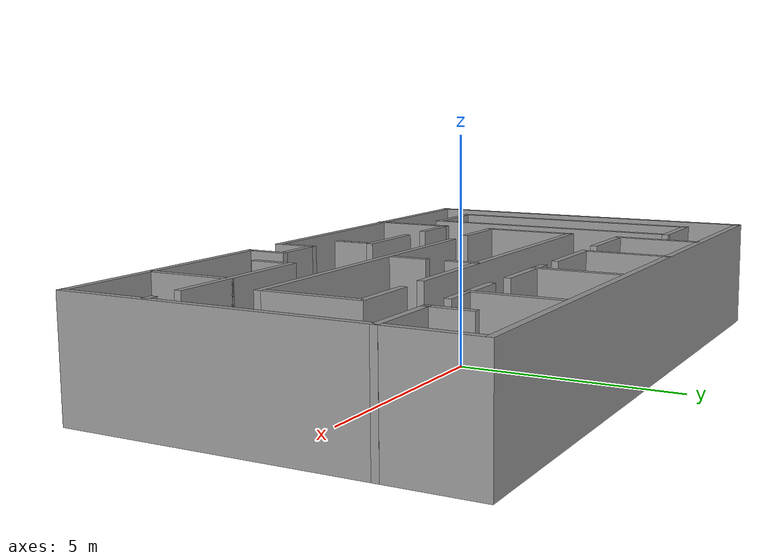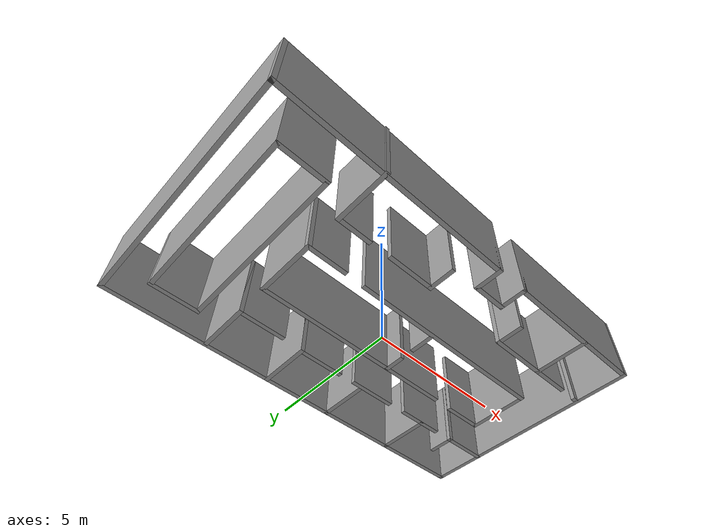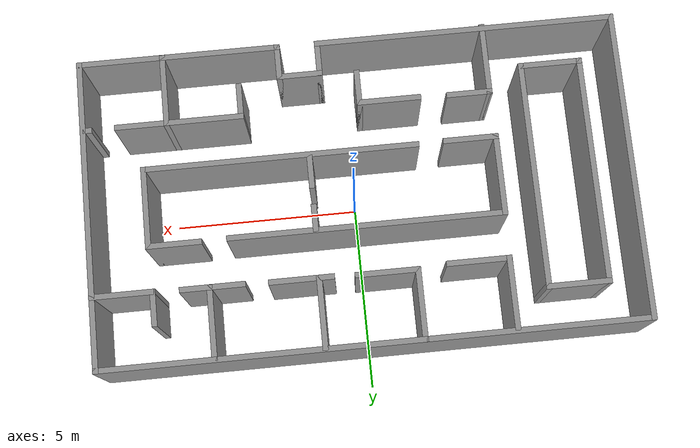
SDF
<?xml version='1.0'?>
<sdf version='1.7'>
  <model name='laber_1'>
    <pose>-0.168779 -0.095136 0 0 -0 0</pose>
    <link name='Wall_0'>
      <collision name='Wall_0_Collision'>
        <geometry>
          <box>
            <size>8.25 0.15 2.5</size>
          </box>
        </geometry>
        <pose>0 0 1.25 0 -0 0</pose>
      </collision>
      <visual name='Wall_0_Visual'>
        <pose>0 0 1.25 0 -0 0</pose>
        <geometry>
          <box>
            <size>8.25 0.15 2.5</size>
          </box>
        </geometry>
        <material>
          <script>
            <uri>file://media/materials/scripts/gazebo.material</uri>
            <name>Gazebo/Grey</name>
          </script>
          <ambient>1 1 1 1</ambient>
        </material>
        <meta>
          <layer>0</layer>
        </meta>
      </visual>
      <pose>-3.25122 -4.15486 0 0 -0 0</pose>
    </link>
    <link name='Wall_1'>
      <collision name='Wall_1_Collision'>
        <geometry>
          <box>
            <size>1 0.15 2.5</size>
          </box>
        </geometry>
        <pose>0 0 1.25 0 -0 0</pose>
      </collision>
      <visual name='Wall_1_Visual'>
        <pose>0 0 1.25 0 -0 0</pose>
        <geometry>
          <box>
            <size>1 0.15 2.5</size>
          </box>
        </geometry>
        <material>
          <script>
            <uri>file://media/materials/scripts/gazebo.material</uri>
            <name>Gazebo/Grey</name>
          </script>
          <ambient>1 1 1 1</ambient>
        </material>
        <meta>
          <layer>0</layer>
        </meta>
      </visual>
      <pose>0.798779 -3.72986 0 0 -0 1.5708</pose>
    </link>
    <link name='Wall_12'>
      <collision name='Wall_12_Collision'>
        <geometry>
          <box>
            <size>8.5 0.15 2.5</size>
          </box>
        </geometry>
        <pose>0 0 1.25 0 -0 0</pose>
      </collision>
      <visual name='Wall_12_Visual'>
        <pose>0 0 1.25 0 -0 0</pose>
        <geometry>
          <box>
            <size>8.5 0.15 2.5</size>
          </box>
        </geometry>
        <material>
          <script>
            <uri>file://media/materials/scripts/gazebo.material</uri>
            <name>Gazebo/Grey</name>
          </script>
          <ambient>1 1 1 1</ambient>
        </material>
        <meta>
          <layer>0</layer>
        </meta>
      </visual>
      <pose>-7.30122 0.020136 0 0 -0 1.5708</pose>
    </link>
    <link name='Wall_13'>
      <collision name='Wall_13_Collision'>
        <geometry>
          <box>
            <size>14.75 0.15 2.5</size>
          </box>
        </geometry>
        <pose>0 0 1.25 0 -0 0</pose>
      </collision>
      <visual name='Wall_13_Visual'>
        <pose>0 0 1.25 0 -0 0</pose>
        <geometry>
          <box>
            <size>14.75 0.15 2.5</size>
          </box>
        </geometry>
        <material>
          <script>
            <uri>file://media/materials/scripts/gazebo.material</uri>
            <name>Gazebo/Grey</name>
          </script>
          <ambient>1 1 1 1</ambient>
        </material>
        <meta>
          <layer>0</layer>
        </meta>
      </visual>
      <pose>-0.001221 4.19514 0 0 -0 0</pose>
    </link>
    <link name='Wall_14'>
      <collision name='Wall_14_Collision'>
        <geometry>
          <box>
            <size>8.5 0.15 2.5</size>
          </box>
        </geometry>
        <pose>0 0 1.25 0 -0 0</pose>
      </collision>
      <visual name='Wall_14_Visual'>
        <pose>0 0 1.25 0 -0 0</pose>
        <geometry>
          <box>
            <size>8.5 0.15 2.5</size>
          </box>
        </geometry>
        <material>
          <script>
            <uri>file://media/materials/scripts/gazebo.material</uri>
            <name>Gazebo/Grey</name>
          </script>
          <ambient>1 1 1 1</ambient>
        </material>
        <meta>
          <layer>0</layer>
        </meta>
      </visual>
      <pose>7.29878 0.020136 0 0 -0 -1.5708</pose>
    </link>
    <link name='Wall_16'>
      <collision name='Wall_16_Collision'>
        <geometry>
          <box>
            <size>6.25 0.15 2.5</size>
          </box>
        </geometry>
        <pose>0 0 1.25 0 -0 0</pose>
      </collision>
      <visual name='Wall_16_Visual'>
        <pose>0 0 1.25 0 -0 0</pose>
        <geometry>
          <box>
            <size>6.25 0.15 2.5</size>
          </box>
        </geometry>
        <material>
          <script>
            <uri>file://media/materials/scripts/gazebo.material</uri>
            <name>Gazebo/Grey</name>
          </script>
          <ambient>1 1 1 1</ambient>
        </material>
        <meta>
          <layer>0</layer>
        </meta>
      </visual>
      <pose>-6.27179 0.072382 0 0 -0 -1.5708</pose>
    </link>
    <link name='Wall_17'>
      <collision name='Wall_17_Collision'>
        <geometry>
          <box>
            <size>1.75 0.15 2.5</size>
          </box>
        </geometry>
        <pose>0 0 1.25 0 -0 0</pose>
      </collision>
      <visual name='Wall_17_Visual'>
        <pose>0 0 1.25 0 -0 0</pose>
        <geometry>
          <box>
            <size>1.75 0.15 2.5</size>
          </box>
        </geometry>
        <material>
          <script>
            <uri>file://media/materials/scripts/gazebo.material</uri>
            <name>Gazebo/Grey</name>
          </script>
          <ambient>1 1 1 1</ambient>
        </material>
        <meta>
          <layer>0</layer>
        </meta>
      </visual>
      <pose>-5.47179 -2.97762 0 0 -0 0</pose>
    </link>
    <link name='Wall_18'>
      <collision name='Wall_18_Collision'>
        <geometry>
          <box>
            <size>6.25 0.15 2.5</size>
          </box>
        </geometry>
        <pose>0 0 1.25 0 -0 0</pose>
      </collision>
      <visual name='Wall_18_Visual'>
        <pose>0 0 1.25 0 -0 0</pose>
        <geometry>
          <box>
            <size>6.25 0.15 2.5</size>
          </box>
        </geometry>
        <material>
          <script>
            <uri>file://media/materials/scripts/gazebo.material</uri>
            <name>Gazebo/Grey</name>
          </script>
          <ambient>1 1 1 1</ambient>
        </material>
        <meta>
          <layer>0</layer>
        </meta>
      </visual>
      <pose>-4.67179 0.072382 0 0 -0 1.5708</pose>
    </link>
    <link name='Wall_19'>
      <collision name='Wall_19_Collision'>
        <geometry>
          <box>
            <size>1.75 0.15 2.5</size>
          </box>
        </geometry>
        <pose>0 0 1.25 0 -0 0</pose>
      </collision>
      <visual name='Wall_19_Visual'>
        <pose>0 0 1.25 0 -0 0</pose>
        <geometry>
          <box>
            <size>1.75 0.15 2.5</size>
          </box>
        </geometry>
        <material>
          <script>
            <uri>file://media/materials/scripts/gazebo.material</uri>
            <name>Gazebo/Grey</name>
          </script>
          <ambient>1 1 1 1</ambient>
        </material>
        <meta>
          <layer>0</layer>
        </meta>
      </visual>
      <pose>-5.47179 3.12238 0 0 -0 3.14159</pose>
    </link>
    <link name='Wall_2'>
      <collision name='Wall_2_Collision'>
        <geometry>
          <box>
            <size>1.25 0.15 2.5</size>
          </box>
        </geometry>
        <pose>0 0 1.25 0 -0 0</pose>
      </collision>
      <visual name='Wall_2_Visual'>
        <pose>0 0 1.25 0 -0 0</pose>
        <geometry>
          <box>
            <size>1.25 0.15 2.5</size>
          </box>
        </geometry>
        <material>
          <script>
            <uri>file://media/materials/scripts/gazebo.material</uri>
            <name>Gazebo/Grey</name>
          </script>
          <ambient>1 1 1 1</ambient>
        </material>
        <meta>
          <layer>0</layer>
        </meta>
      </visual>
      <pose>1.34878 -3.30486 0 0 -0 0</pose>
    </link>
    <link name='Wall_21'>
      <collision name='Wall_21_Collision'>
        <geometry>
          <box>
            <size>2 0.15 2.5</size>
          </box>
        </geometry>
        <pose>0 0 1.25 0 -0 0</pose>
      </collision>
      <visual name='Wall_21_Visual'>
        <pose>0 0 1.25 0 -0 0</pose>
        <geometry>
          <box>
            <size>2 0.15 2.5</size>
          </box>
        </geometry>
        <material>
          <script>
            <uri>file://media/materials/scripts/gazebo.material</uri>
            <name>Gazebo/Grey</name>
          </script>
          <ambient>1 1 1 1</ambient>
        </material>
        <meta>
          <layer>0</layer>
        </meta>
      </visual>
      <pose>-3.72742 3.192 0 0 -0 -1.5708</pose>
    </link>
    <link name='Wall_22'>
      <collision name='Wall_22_Collision'>
        <geometry>
          <box>
            <size>1.75 0.15 2.5</size>
          </box>
        </geometry>
        <pose>0 0 1.25 0 -0 0</pose>
      </collision>
      <visual name='Wall_22_Visual'>
        <pose>0 0 1.25 0 -0 0</pose>
        <geometry>
          <box>
            <size>1.75 0.15 2.5</size>
          </box>
        </geometry>
        <material>
          <script>
            <uri>file://media/materials/scripts/gazebo.material</uri>
            <name>Gazebo/Grey</name>
          </script>
          <ambient>1 1 1 1</ambient>
        </material>
        <meta>
          <layer>0</layer>
        </meta>
      </visual>
      <pose>-2.92742 2.267 0 0 -0 0</pose>
    </link>
    <link name='Wall_24'>
      <collision name='Wall_24_Collision'>
        <geometry>
          <box>
            <size>2 0.15 2.5</size>
          </box>
        </geometry>
        <pose>0 0 1.25 0 -0 0</pose>
      </collision>
      <visual name='Wall_24_Visual'>
        <pose>0 0 1.25 0 -0 0</pose>
        <geometry>
          <box>
            <size>2 0.15 2.5</size>
          </box>
        </geometry>
        <material>
          <script>
            <uri>file://media/materials/scripts/gazebo.material</uri>
            <name>Gazebo/Grey</name>
          </script>
          <ambient>1 1 1 1</ambient>
        </material>
        <meta>
          <layer>0</layer>
        </meta>
      </visual>
      <pose>-1.29871 3.26139 0 0 -0 -1.5708</pose>
    </link>
    <link name='Wall_25'>
      <collision name='Wall_25_Collision'>
        <geometry>
          <box>
            <size>1.75 0.15 2.5</size>
          </box>
        </geometry>
        <pose>0 0 1.25 0 -0 0</pose>
      </collision>
      <visual name='Wall_25_Visual'>
        <pose>0 0 1.25 0 -0 0</pose>
        <geometry>
          <box>
            <size>1.75 0.15 2.5</size>
          </box>
        </geometry>
        <material>
          <script>
            <uri>file://media/materials/scripts/gazebo.material</uri>
            <name>Gazebo/Grey</name>
          </script>
          <ambient>1 1 1 1</ambient>
        </material>
        <meta>
          <layer>0</layer>
        </meta>
      </visual>
      <pose>-0.498708 2.33639 0 0 -0 0</pose>
    </link>
    <link name='Wall_27'>
      <collision name='Wall_27_Collision'>
        <geometry>
          <box>
            <size>2 0.15 2.5</size>
          </box>
        </geometry>
        <pose>0 0 1.25 0 -0 0</pose>
      </collision>
      <visual name='Wall_27_Visual'>
        <pose>0 0 1.25 0 -0 0</pose>
        <geometry>
          <box>
            <size>2 0.15 2.5</size>
          </box>
        </geometry>
        <material>
          <script>
            <uri>file://media/materials/scripts/gazebo.material</uri>
            <name>Gazebo/Grey</name>
          </script>
          <ambient>1 1 1 1</ambient>
        </material>
        <meta>
          <layer>0</layer>
        </meta>
      </visual>
      <pose>1.31505 3.23826 0 0 -0 -1.5708</pose>
    </link>
    <link name='Wall_3'>
      <collision name='Wall_3_Collision'>
        <geometry>
          <box>
            <size>1 0.15 2.5</size>
          </box>
        </geometry>
        <pose>0 0 1.25 0 -0 0</pose>
      </collision>
      <visual name='Wall_3_Visual'>
        <pose>0 0 1.25 0 -0 0</pose>
        <geometry>
          <box>
            <size>1 0.15 2.5</size>
          </box>
        </geometry>
        <material>
          <script>
            <uri>file://media/materials/scripts/gazebo.material</uri>
            <name>Gazebo/Grey</name>
          </script>
          <ambient>1 1 1 1</ambient>
        </material>
        <meta>
          <layer>0</layer>
        </meta>
      </visual>
      <pose>1.89878 -3.72986 0 0 -0 -1.5708</pose>
    </link>
    <link name='Wall_32'>
      <collision name='Wall_32_Collision'>
        <geometry>
          <box>
            <size>1.75 0.15 2.5</size>
          </box>
        </geometry>
        <pose>0 0 1.25 0 -0 0</pose>
      </collision>
      <visual name='Wall_32_Visual'>
        <pose>0 0 1.25 0 -0 0</pose>
        <geometry>
          <box>
            <size>1.75 0.15 2.5</size>
          </box>
        </geometry>
        <material>
          <script>
            <uri>file://media/materials/scripts/gazebo.material</uri>
            <name>Gazebo/Grey</name>
          </script>
          <ambient>1 1 1 1</ambient>
        </material>
        <meta>
          <layer>0</layer>
        </meta>
      </visual>
      <pose>1.78045 2.31227 0 0 -0 0</pose>
    </link>
    <link name='Wall_34'>
      <collision name='Wall_34_Collision'>
        <geometry>
          <box>
            <size>1.75 0.15 2.5</size>
          </box>
        </geometry>
        <pose>0 0 1.25 0 -0 0</pose>
      </collision>
      <visual name='Wall_34_Visual'>
        <pose>0 0 1.25 0 -0 0</pose>
        <geometry>
          <box>
            <size>1.75 0.15 2.5</size>
          </box>
        </geometry>
        <material>
          <script>
            <uri>file://media/materials/scripts/gazebo.material</uri>
            <name>Gazebo/Grey</name>
          </script>
          <ambient>1 1 1 1</ambient>
        </material>
        <meta>
          <layer>0</layer>
        </meta>
      </visual>
      <pose>4.12731 2.28725 0 0 -0 0</pose>
    </link>
    <link name='Wall_38'>
      <collision name='Wall_38_Collision'>
        <geometry>
          <box>
            <size>2 0.15 2.5</size>
          </box>
        </geometry>
        <pose>0 0 1.25 0 -0 0</pose>
      </collision>
      <visual name='Wall_38_Visual'>
        <pose>0 0 1.25 0 -0 0</pose>
        <geometry>
          <box>
            <size>2 0.15 2.5</size>
          </box>
        </geometry>
        <material>
          <script>
            <uri>file://media/materials/scripts/gazebo.material</uri>
            <name>Gazebo/Grey</name>
          </script>
          <ambient>1 1 1 1</ambient>
        </material>
        <meta>
          <layer>0</layer>
        </meta>
      </visual>
      <pose>4.20557 3.22312 0 0 -0 -1.5708</pose>
    </link>
    <link name='Wall_45'>
      <collision name='Wall_45_Collision'>
        <geometry>
          <box>
            <size>1.75 0.15 2.5</size>
          </box>
        </geometry>
        <pose>0 0 1.25 0 -0 0</pose>
      </collision>
      <visual name='Wall_45_Visual'>
        <pose>0 0 1.25 0 -0 0</pose>
        <geometry>
          <box>
            <size>1.75 0.15 2.5</size>
          </box>
        </geometry>
        <material>
          <script>
            <uri>file://media/materials/scripts/gazebo.material</uri>
            <name>Gazebo/Grey</name>
          </script>
          <ambient>1 1 1 1</ambient>
        </material>
        <meta>
          <layer>0</layer>
        </meta>
      </visual>
      <pose>6.50122 2.26116 0 0 -0 3.14159</pose>
    </link>
    <link name='Wall_46'>
      <collision name='Wall_46_Collision'>
        <geometry>
          <box>
            <size>1 0.15 2.5</size>
          </box>
        </geometry>
        <pose>0 0 1.25 0 -0 0</pose>
      </collision>
      <visual name='Wall_46_Visual'>
        <pose>0 0 1.25 0 -0 0</pose>
        <geometry>
          <box>
            <size>1 0.15 2.5</size>
          </box>
        </geometry>
        <material>
          <script>
            <uri>file://media/materials/scripts/gazebo.material</uri>
            <name>Gazebo/Grey</name>
          </script>
          <ambient>1 1 1 1</ambient>
        </material>
        <meta>
          <layer>0</layer>
        </meta>
      </visual>
      <pose>5.70122 2.68616 0 0 -0 1.5708</pose>
    </link>
    <link name='Wall_48'>
      <collision name='Wall_48_Collision'>
        <geometry>
          <box>
            <size>1.5 0.15 2.5</size>
          </box>
        </geometry>
        <pose>0 0 1.25 0 -0 0</pose>
      </collision>
      <visual name='Wall_48_Visual'>
        <pose>0 0 1.25 0 -0 0</pose>
        <geometry>
          <box>
            <size>1.5 0.15 2.5</size>
          </box>
        </geometry>
        <material>
          <script>
            <uri>file://media/materials/scripts/gazebo.material</uri>
            <name>Gazebo/Grey</name>
          </script>
          <ambient>1 1 1 1</ambient>
        </material>
        <meta>
          <layer>0</layer>
        </meta>
      </visual>
      <pose>5.06409 1.04517 0 0 -0 0</pose>
    </link>
    <link name='Wall_49'>
      <collision name='Wall_49_Collision'>
        <geometry>
          <box>
            <size>2.25 0.15 2.5</size>
          </box>
        </geometry>
        <pose>0 0 1.25 0 -0 0</pose>
      </collision>
      <visual name='Wall_49_Visual'>
        <pose>0 0 1.25 0 -0 0</pose>
        <geometry>
          <box>
            <size>2.25 0.15 2.5</size>
          </box>
        </geometry>
        <material>
          <script>
            <uri>file://media/materials/scripts/gazebo.material</uri>
            <name>Gazebo/Grey</name>
          </script>
          <ambient>1 1 1 1</ambient>
        </material>
        <meta>
          <layer>0</layer>
        </meta>
      </visual>
      <pose>5.73909 -0.004831 0 0 -0 -1.5708</pose>
    </link>
    <link name='Wall_50'>
      <collision name='Wall_50_Collision'>
        <geometry>
          <box>
            <size>7.5 0.15 2.5</size>
          </box>
        </geometry>
        <pose>0 0 1.25 0 -0 0</pose>
      </collision>
      <visual name='Wall_50_Visual'>
        <pose>0 0 1.25 0 -0 0</pose>
        <geometry>
          <box>
            <size>7.5 0.15 2.5</size>
          </box>
        </geometry>
        <material>
          <script>
            <uri>file://media/materials/scripts/gazebo.material</uri>
            <name>Gazebo/Grey</name>
          </script>
          <ambient>1 1 1 1</ambient>
        </material>
        <meta>
          <layer>0</layer>
        </meta>
      </visual>
      <pose>2.06409 -1.05483 0 0 -0 3.14159</pose>
    </link>
    <link name='Wall_54'>
      <collision name='Wall_54_Collision'>
        <geometry>
          <box>
            <size>1.5 0.15 2.5</size>
          </box>
        </geometry>
        <pose>0 0 1.25 0 -0 0</pose>
      </collision>
      <visual name='Wall_54_Visual'>
        <pose>0 0 1.25 0 -0 0</pose>
        <geometry>
          <box>
            <size>1.5 0.15 2.5</size>
          </box>
        </geometry>
        <material>
          <script>
            <uri>file://media/materials/scripts/gazebo.material</uri>
            <name>Gazebo/Grey</name>
          </script>
          <ambient>1 1 1 1</ambient>
        </material>
        <meta>
          <layer>0</layer>
        </meta>
      </visual>
      <pose>-3.08729 -1.0728 0 0 -0 3.14159</pose>
    </link>
    <link name='Wall_55'>
      <collision name='Wall_55_Collision'>
        <geometry>
          <box>
            <size>2.25 0.15 2.5</size>
          </box>
        </geometry>
        <pose>0 0 1.25 0 -0 0</pose>
      </collision>
      <visual name='Wall_55_Visual'>
        <pose>0 0 1.25 0 -0 0</pose>
        <geometry>
          <box>
            <size>2.25 0.15 2.5</size>
          </box>
        </geometry>
        <material>
          <script>
            <uri>file://media/materials/scripts/gazebo.material</uri>
            <name>Gazebo/Grey</name>
          </script>
          <ambient>1 1 1 1</ambient>
        </material>
        <meta>
          <layer>0</layer>
        </meta>
      </visual>
      <pose>-3.76229 -0.022804 0 0 -0 1.5708</pose>
    </link>
    <link name='Wall_56'>
      <collision name='Wall_56_Collision'>
        <geometry>
          <box>
            <size>7.5 0.15 2.5</size>
          </box>
        </geometry>
        <pose>0 0 1.25 0 -0 0</pose>
      </collision>
      <visual name='Wall_56_Visual'>
        <pose>0 0 1.25 0 -0 0</pose>
        <geometry>
          <box>
            <size>7.5 0.15 2.5</size>
          </box>
        </geometry>
        <material>
          <script>
            <uri>file://media/materials/scripts/gazebo.material</uri>
            <name>Gazebo/Grey</name>
          </script>
          <ambient>1 1 1 1</ambient>
        </material>
        <meta>
          <layer>0</layer>
        </meta>
      </visual>
      <pose>-0.087286 1.0272 0 0 -0 0</pose>
    </link>
    <link name='Wall_58'>
      <collision name='Wall_58_Collision'>
        <geometry>
          <box>
            <size>0.75 0.15 2.5</size>
          </box>
        </geometry>
        <pose>0 0 1.25 0 -0 0</pose>
      </collision>
      <visual name='Wall_58_Visual'>
        <pose>0 0 1.25 0 -0 0</pose>
        <geometry>
          <box>
            <size>0.75 0.15 2.5</size>
          </box>
        </geometry>
        <material>
          <script>
            <uri>file://media/materials/scripts/gazebo.material</uri>
            <name>Gazebo/Grey</name>
          </script>
          <ambient>1 1 1 1</ambient>
        </material>
        <meta>
          <layer>0</layer>
        </meta>
      </visual>
      <pose>1.28671 0.694704 0 0 -0 -1.5708</pose>
    </link>
    <link name='Wall_6'>
      <collision name='Wall_6_Collision'>
        <geometry>
          <box>
            <size>5.5 0.15 2.5</size>
          </box>
        </geometry>
        <pose>0 0 1.25 0 -0 0</pose>
      </collision>
      <visual name='Wall_6_Visual'>
        <pose>0 0 1.25 0 -0 0</pose>
        <geometry>
          <box>
            <size>5.5 0.15 2.5</size>
          </box>
        </geometry>
        <material>
          <script>
            <uri>file://media/materials/scripts/gazebo.material</uri>
            <name>Gazebo/Grey</name>
          </script>
          <ambient>1 1 1 1</ambient>
        </material>
        <meta>
          <layer>0</layer>
        </meta>
      </visual>
      <pose>4.57378 -4.15486 0 0 -0 0</pose>
    </link>
    <link name='Wall_60'>
      <collision name='Wall_60_Collision'>
        <geometry>
          <box>
            <size>1 0.15 2.5</size>
          </box>
        </geometry>
        <pose>0 0 1.25 0 -0 0</pose>
      </collision>
      <visual name='Wall_60_Visual'>
        <pose>0 0 1.25 0 -0 0</pose>
        <geometry>
          <box>
            <size>1 0.15 2.5</size>
          </box>
        </geometry>
        <material>
          <script>
            <uri>file://media/materials/scripts/gazebo.material</uri>
            <name>Gazebo/Grey</name>
          </script>
          <ambient>1 1 1 1</ambient>
        </material>
        <meta>
          <layer>0</layer>
        </meta>
      </visual>
      <pose>1.28301 -0.615783 0 0 -0 -1.5708</pose>
    </link>
    <link name='Wall_62'>
      <collision name='Wall_62_Collision'>
        <geometry>
          <box>
            <size>2 0.15 2.5</size>
          </box>
        </geometry>
        <pose>0 0 1.25 0 -0 0</pose>
      </collision>
      <visual name='Wall_62_Visual'>
        <pose>0 0 1.25 0 -0 0</pose>
        <geometry>
          <box>
            <size>2 0.15 2.5</size>
          </box>
        </geometry>
        <material>
          <script>
            <uri>file://media/materials/scripts/gazebo.material</uri>
            <name>Gazebo/Grey</name>
          </script>
          <ambient>1 1 1 1</ambient>
        </material>
        <meta>
          <layer>0</layer>
        </meta>
      </visual>
      <pose>-3.74242 -3.27014 0 0 -0 1.5708</pose>
    </link>
    <link name='Wall_63'>
      <collision name='Wall_63_Collision'>
        <geometry>
          <box>
            <size>1.25 0.15 2.5</size>
          </box>
        </geometry>
        <pose>0 0 1.25 0 -0 0</pose>
      </collision>
      <visual name='Wall_63_Visual'>
        <pose>0 0 1.25 0 -0 0</pose>
        <geometry>
          <box>
            <size>1.25 0.15 2.5</size>
          </box>
        </geometry>
        <material>
          <script>
            <uri>file://media/materials/scripts/gazebo.material</uri>
            <name>Gazebo/Grey</name>
          </script>
          <ambient>1 1 1 1</ambient>
        </material>
        <meta>
          <layer>0</layer>
        </meta>
      </visual>
      <pose>-3.19242 -2.34514 0 0 -0 0</pose>
    </link>
    <link name='Wall_65'>
      <collision name='Wall_65_Collision'>
        <geometry>
          <box>
            <size>1.75 0.15 2.5</size>
          </box>
        </geometry>
        <pose>0 0 1.25 0 -0 0</pose>
      </collision>
      <visual name='Wall_65_Visual'>
        <pose>0 0 1.25 0 -0 0</pose>
        <geometry>
          <box>
            <size>1.75 0.15 2.5</size>
          </box>
        </geometry>
        <material>
          <script>
            <uri>file://media/materials/scripts/gazebo.material</uri>
            <name>Gazebo/Grey</name>
          </script>
          <ambient>1 1 1 1</ambient>
        </material>
        <meta>
          <layer>0</layer>
        </meta>
      </visual>
      <pose>-1.00258 -2.36808 0 0 -0 0</pose>
    </link>
    <link name='Wall_66'>
      <collision name='Wall_66_Collision'>
        <geometry>
          <box>
            <size>1 0.15 2.5</size>
          </box>
        </geometry>
        <pose>0 0 1.25 0 -0 0</pose>
      </collision>
      <visual name='Wall_66_Visual'>
        <pose>0 0 1.25 0 -0 0</pose>
        <geometry>
          <box>
            <size>1 0.15 2.5</size>
          </box>
        </geometry>
        <material>
          <script>
            <uri>file://media/materials/scripts/gazebo.material</uri>
            <name>Gazebo/Grey</name>
          </script>
          <ambient>1 1 1 1</ambient>
        </material>
        <meta>
          <layer>0</layer>
        </meta>
      </visual>
      <pose>-0.202583 -2.79308 0 0 -0 -1.5708</pose>
    </link>
    <link name='Wall_74'>
      <collision name='Wall_74_Collision'>
        <geometry>
          <box>
            <size>0.25 0.15 2.5</size>
          </box>
        </geometry>
        <pose>0 0 1.25 0 -0 0</pose>
      </collision>
      <visual name='Wall_74_Visual'>
        <pose>0 0 1.25 0 -0 0</pose>
        <geometry>
          <box>
            <size>0.25 0.15 2.5</size>
          </box>
        </geometry>
        <material>
          <script>
            <uri>file://media/materials/scripts/gazebo.material</uri>
            <name>Gazebo/Grey</name>
          </script>
          <ambient>1 1 1 1</ambient>
        </material>
        <meta>
          <layer>0</layer>
        </meta>
      </visual>
      <pose>7.1727 -2.28438 0 0 -0 3.14159</pose>
    </link>
    <link name='Wall_76'>
      <collision name='Wall_76_Collision'>
        <geometry>
          <box>
            <size>3.5 0.15 2.5</size>
          </box>
        </geometry>
        <pose>0 0 1.25 0 -0 0</pose>
      </collision>
      <visual name='Wall_76_Visual'>
        <pose>0 0 1.25 0 -0 0</pose>
        <geometry>
          <box>
            <size>3.5 0.15 2.5</size>
          </box>
        </geometry>
        <material>
          <script>
            <uri>file://media/materials/scripts/gazebo.material</uri>
            <name>Gazebo/Grey</name>
          </script>
          <ambient>1 1 1 1</ambient>
        </material>
        <meta>
          <layer>0</layer>
        </meta>
      </visual>
      <pose>4.69541 -2.29559 0 0 -0 3.14159</pose>
    </link>
    <link name='Wall_77'>
      <collision name='Wall_77_Collision'>
        <geometry>
          <box>
            <size>1 0.15 2.5</size>
          </box>
        </geometry>
        <pose>0 0 1.25 0 -0 0</pose>
      </collision>
      <visual name='Wall_77_Visual'>
        <pose>0 0 1.25 0 -0 0</pose>
        <geometry>
          <box>
            <size>1 0.15 2.5</size>
          </box>
        </geometry>
        <material>
          <script>
            <uri>file://media/materials/scripts/gazebo.material</uri>
            <name>Gazebo/Grey</name>
          </script>
          <ambient>1 1 1 1</ambient>
        </material>
        <meta>
          <layer>0</layer>
        </meta>
      </visual>
      <pose>3.02041 -2.72059 0 0 -0 -1.5708</pose>
    </link>
    <link name='Wall_79'>
      <collision name='Wall_79_Collision'>
        <geometry>
          <box>
            <size>2 0.15 2.5</size>
          </box>
        </geometry>
        <pose>0 0 1.25 0 -0 0</pose>
      </collision>
      <visual name='Wall_79_Visual'>
        <pose>0 0 1.25 0 -0 0</pose>
        <geometry>
          <box>
            <size>2 0.15 2.5</size>
          </box>
        </geometry>
        <material>
          <script>
            <uri>file://media/materials/scripts/gazebo.material</uri>
            <name>Gazebo/Grey</name>
          </script>
          <ambient>1 1 1 1</ambient>
        </material>
        <meta>
          <layer>0</layer>
        </meta>
      </visual>
      <pose>5.03589 -3.22059 0 0 -0 -1.5708</pose>
    </link>
    <static>1</static>
  </model>
</sdf>
